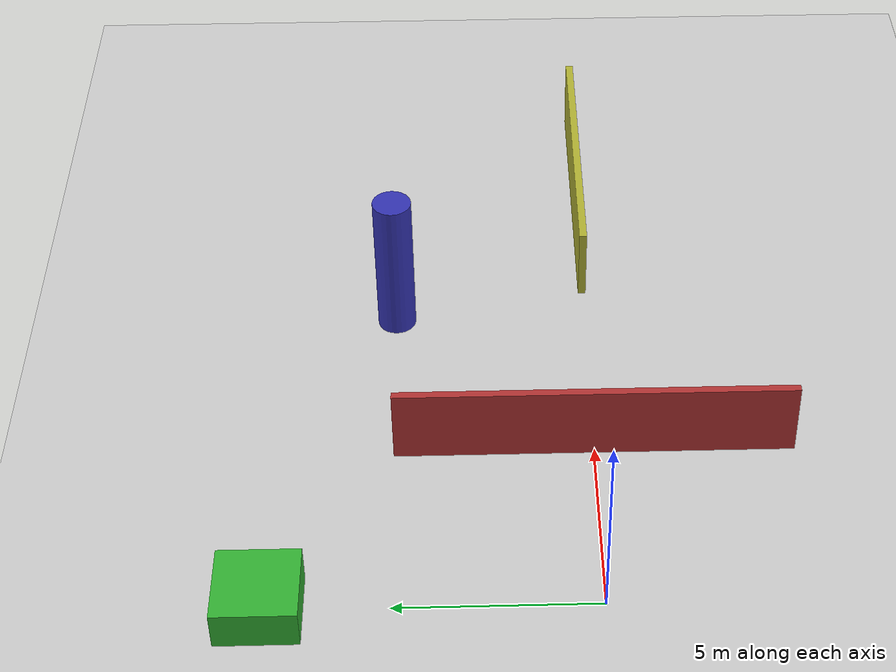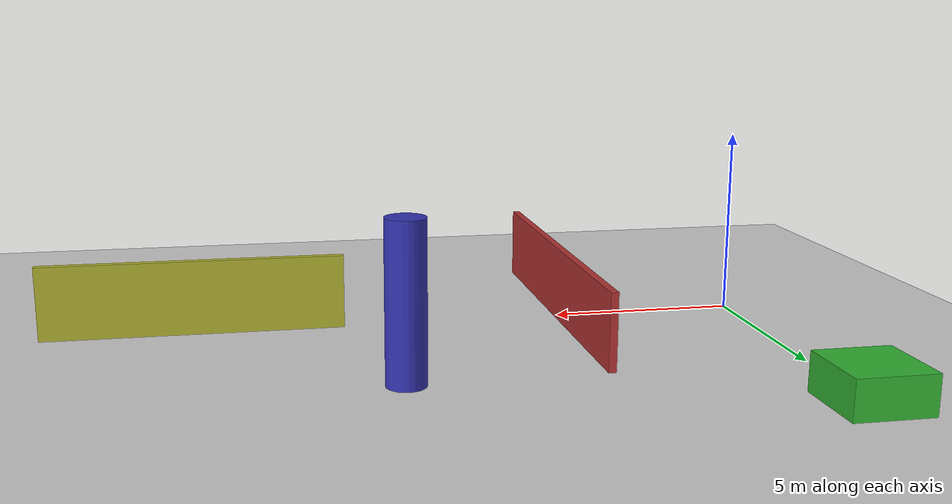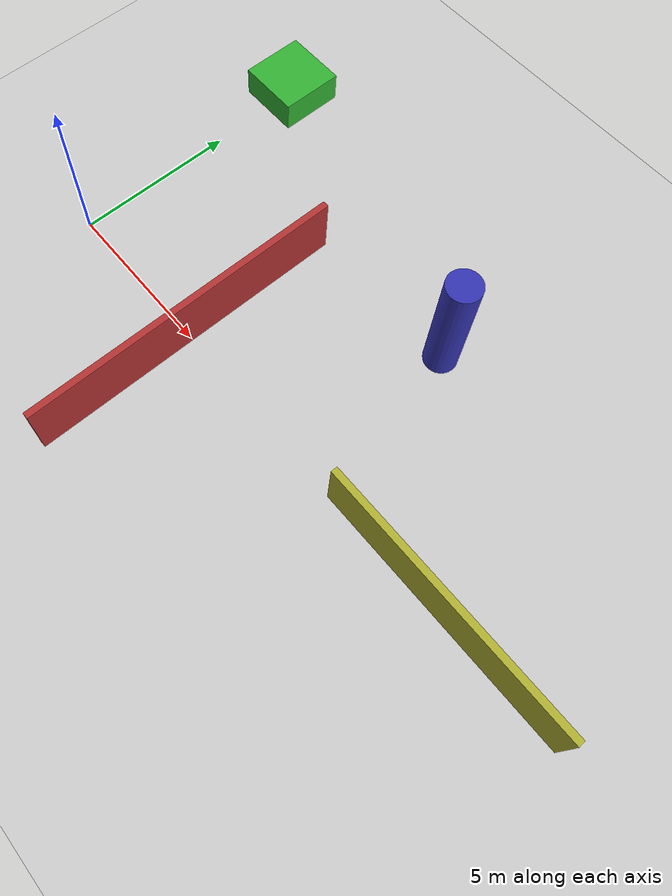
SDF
<?xml version="1.0" ?>
<sdf version="1.8">
  <world name="office_obstacles">

    <!-- Physics -->
    <physics name="1ms" type="ignored">
      <max_step_size>0.001</max_step_size>
      <real_time_factor>1.0</real_time_factor>
    </physics>

    <!-- Lighting -->
    <light type="directional" name="sun">
      <cast_shadows>true</cast_shadows>
      <pose>0 0 10 0 0 0</pose>
      <diffuse>0.8 0.8 0.8 1</diffuse>
      <specular>0.2 0.2 0.2 1</specular>
      <attenuation>
        <range>1000</range>
        <constant>0.9</constant>
        <linear>0.01</linear>
        <quadratic>0.001</quadratic>
      </attenuation>
      <direction>-0.5 0.1 -0.9</direction>
    </light>

    <!-- Ground plane -->
    <model name="ground_plane">
      <static>true</static>
      <link name="link">
        <collision name="collision">
          <geometry>
            <plane>
              <normal>0 0 1</normal>
            </plane>
          </geometry>
        </collision>
        <visual name="visual">
          <geometry>
            <plane>
              <normal>0 0 1</normal>
              <size>100 100</size>
            </plane>
          </geometry>
          <material>
            <ambient>0.8 0.8 0.8 1</ambient>
            <diffuse>0.8 0.8 0.8 1</diffuse>
            <specular>0.8 0.8 0.8 1</specular>
          </material>
        </visual>
      </link>
    </model>

    <!-- Obstacle 1: Wall -->
    <model name="wall_1">
      <static>true</static>
      <pose>5 0 1 0 0 0</pose>
      <link name="link">
        <collision name="collision">
          <geometry>
            <box>
              <size>0.2 10 2</size>
            </box>
          </geometry>
        </collision>
        <visual name="visual">
          <geometry>
            <box>
              <size>0.2 10 2</size>
            </box>
          </geometry>
          <material>
            <ambient>0.7 0.2 0.2 1</ambient>
            <diffuse>0.7 0.2 0.2 1</diffuse>
          </material>
        </visual>
      </link>
    </model>

    <!-- Obstacle 2: Pillar -->
    <model name="pillar_1">
      <static>true</static>
      <pose>10 5 2 0 0 0</pose>
      <link name="link">
        <collision name="collision">
          <geometry>
            <cylinder>
              <radius>0.5</radius>
              <length>4</length>
            </cylinder>
          </geometry>
        </collision>
        <visual name="visual">
          <geometry>
            <cylinder>
              <radius>0.5</radius>
              <length>4</length>
            </cylinder>
          </geometry>
          <material>
            <ambient>0.2 0.2 0.7 1</ambient>
            <diffuse>0.2 0.2 0.7 1</diffuse>
          </material>
        </visual>
      </link>
    </model>

    <!-- Obstacle 3: Box -->
    <model name="box_1">
      <static>true</static>
      <pose>0 8 0.5 0 0 0</pose>
      <link name="link">
        <collision name="collision">
          <geometry>
            <box>
              <size>2 2 1</size>
            </box>
          </geometry>
        </collision>
        <visual name="visual">
          <geometry>
            <box>
              <size>2 2 1</size>
            </box>
          </geometry>
          <material>
            <ambient>0.2 0.7 0.2 1</ambient>
            <diffuse>0.2 0.7 0.2 1</diffuse>
          </material>
        </visual>
      </link>
    </model>

    <!-- More obstacles for complex navigation -->
    <model name="wall_2">
      <static>true</static>
      <pose>15 0 1 0 0 1.57</pose>
      <link name="link">
        <collision name="collision">
          <geometry>
            <box>
              <size>0.2 8 2</size>
            </box>
          </geometry>
        </collision>
        <visual name="visual">
          <geometry>
            <box>
              <size>0.2 8 2</size>
            </box>
          </geometry>
          <material>
            <ambient>0.7 0.7 0.2 1</ambient>
            <diffuse>0.7 0.7 0.2 1</diffuse>
          </material>
        </visual>
      </link>
    </model>

  </world>
</sdf>
